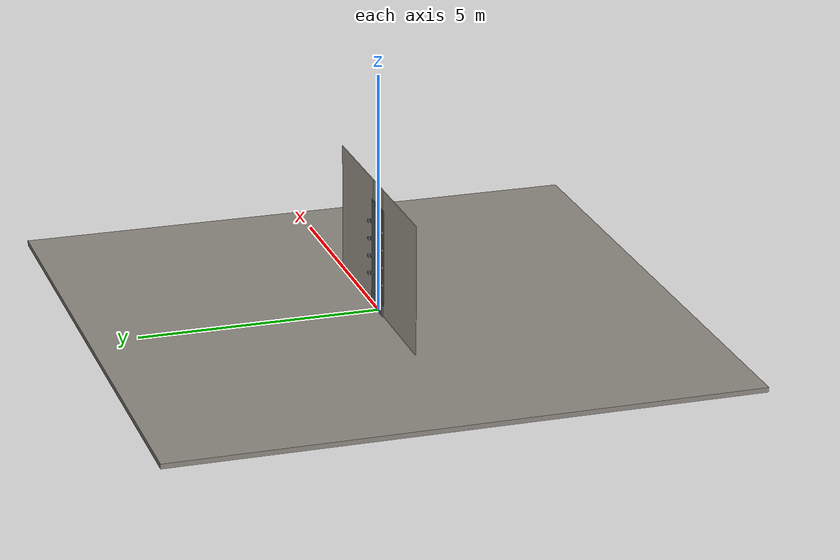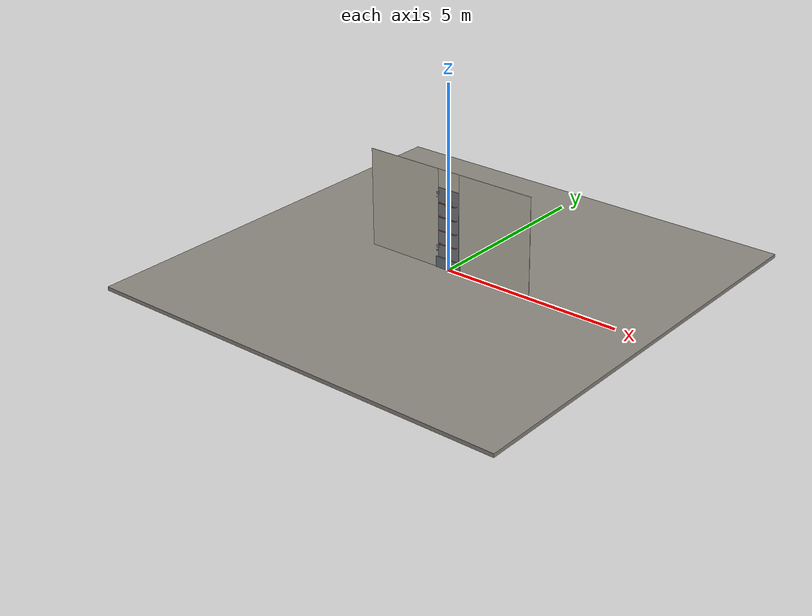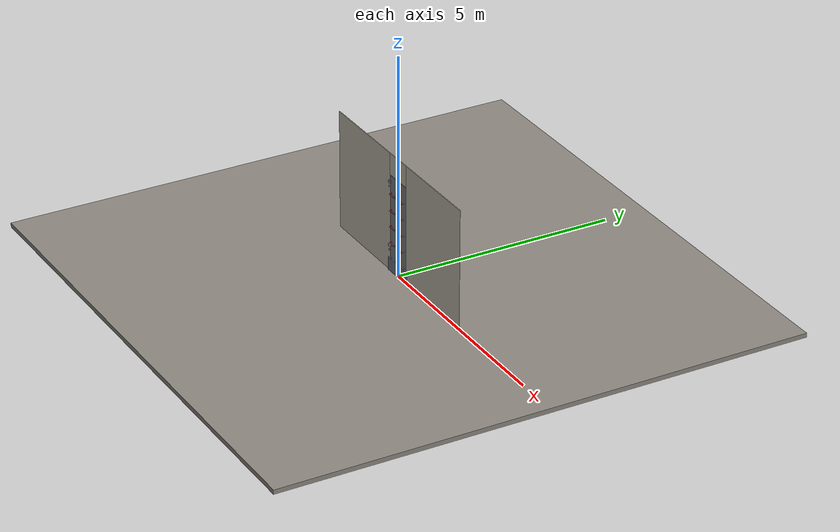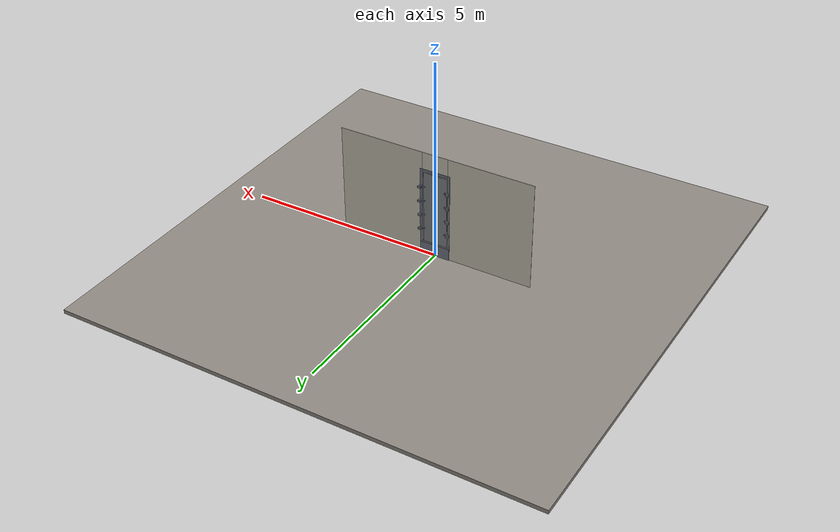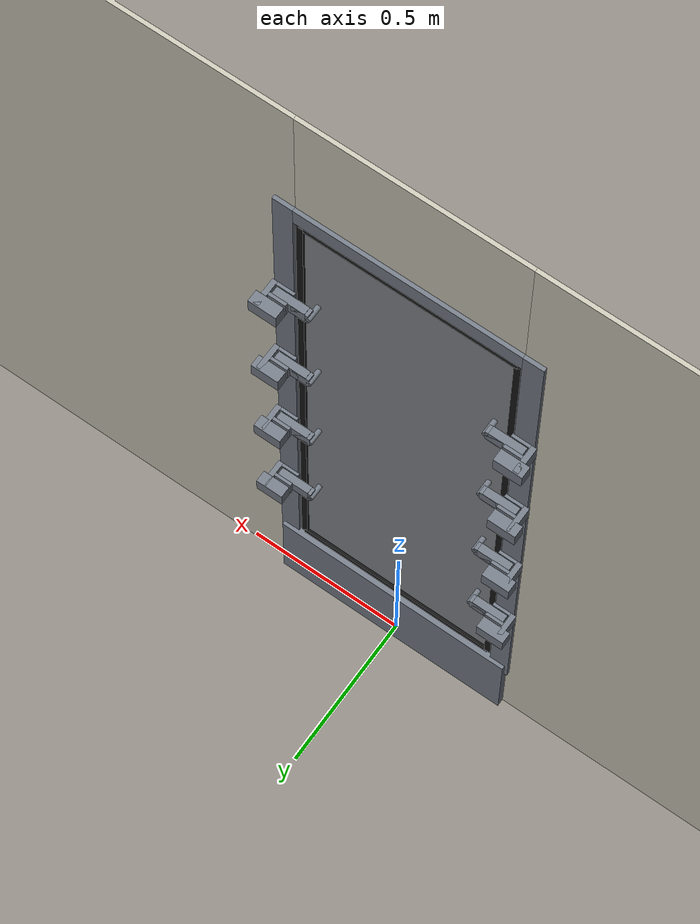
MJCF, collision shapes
<?xml version="1.0" ?>
<mujoco model="db0674_ship_watertight_full">
  <compiler angle="radian" meshdir="../../hardware" texturedir="../../textures" autolimits="true" inertiafromgeom="false"/>
  <option timestep="0.002" integrator="implicitfast" cone="elliptic" impratio="10" noslip_iterations="3">
    <flag multiccd="enable"/>
  </option>
  <size memory="16M"/>
  <default>
    <geom condim="4" solref="0.005 1" solimp="0.95 0.99 0.001"/>
    <joint solreflimit="0.005 1" solimplimit="0.95 0.99 0.001"/>
    <tendon solreflimit="0.005 1"/>
    <equality solref="0.002 1"/>
  </default>
  <visual>
    <headlight ambient="0.4 0.4 0.4" diffuse="0.7 0.7 0.7" specular="0.2 0.2 0.2"/>
    <quality shadowsize="4096"/>
    <map znear="0.01" zfar="60"/>
  </visual>
  <asset>
    <mesh name="hinge_460c4f7b0c" file="hinge_460c4f7b0c.obj"/>
    <mesh name="hinge_jamb_d28bb5db30" file="hinge_jamb_d28bb5db30.obj"/>
    <mesh name="lever_88a39579f3" file="lever_88a39579f3.obj"/>
    <material name="mat_floor" rgba="0.55 0.53 0.5 1" specular="0.2" shininess="0.15" reflectance="0"/>
    <material name="mat_wall" rgba="0.78 0.76 0.7 1" specular="0.2" shininess="0.1" reflectance="0"/>
    <material name="mat_leaf" rgba="0.5 0.51 0.53 1" specular="0.23" shininess="0.62" reflectance="0.02"/>
    <material name="mat_frame" rgba="0.45 0.48 0.52 1" specular="0.32" shininess="0.6" reflectance="0.08"/>
    <material name="mat_gasket" rgba="0.08 0.08 0.08 1" specular="0.2" shininess="0.1" reflectance="0"/>
    <material name="mat_op_steel_painted" rgba="0.45 0.48 0.52 1" specular="0.32" shininess="0.6" reflectance="0.08"/>
    <material name="mat_hinge" rgba="0.65 0.66 0.68 1" specular="0.74" shininess="0.5" reflectance="0.36"/>
    <material name="mat_placard" rgba="0.95 0.75 0.05 1" specular="0.2" shininess="0.5" reflectance="0"/>
    <texture name="skybox" type="skybox" builtin="gradient" rgb1="0.6 0.7 0.85" rgb2="0.9 0.92 0.95" width="256" height="256"/>
  </asset>
  <worldbody>
    <light name="sun" pos="1.5 -2.5 4" dir="-0.3 0.5 -0.8" directional="true" diffuse="0.8 0.8 0.8" specular="0.3 0.3 0.3" castshadow="true"/>
    <light name="fill" pos="-1.5 2.5 3" dir="0.3 -0.5 -0.7" directional="true" diffuse="0.35 0.35 0.4" castshadow="false"/>
    <camera name="robot_view" pos="0 -2.415625 1.781375" xyaxes="1 0 0 0 0.26963 0.962964" fovy="52"/>
    <camera name="far_view" pos="0 2.415625 1.781375" xyaxes="-1 0 0 0 -0.26963 0.962964" fovy="52"/>
    <camera name="iso" pos="1.835875 -2.029125 2.167875" xyaxes="0.741536 0.670913 0 -0.242917 0.268487 0.932151" fovy="46"/>
    <camera name="detail_handle" pos="0.264 -0.856 0.9675" xyaxes="0.97561 0.219512 0 -0.070934 0.315262 0.94635" fovy="38"/>
    <geom name="floor" type="box" size="6 6 0.05" pos="0 0 -0.05" material="mat_floor" group="0" contype="1" conaffinity="1" friction="0.8 0.005 0.0001" density="2400"/>
    <geom name="wall_left" type="box" size="1.085 0.006 1.35" pos="-1.415 0 1.35" material="mat_wall" group="0" contype="1" conaffinity="1" friction="0.6 0.005 0.0001" density="800"/>
    <geom name="wall_right" type="box" size="1.085 0.006 1.35" pos="1.415 0 1.35" material="mat_wall" group="0" contype="1" conaffinity="1" friction="0.6 0.005 0.0001" density="800"/>
    <geom name="wall_header" type="box" size="0.33 0.006 0.245" pos="0 0 2.455" material="mat_wall" group="0" contype="1" conaffinity="1" friction="0.6 0.005 0.0001" density="800"/>
    <geom name="flange_l" type="box" size="0.03 0.006 1.015" pos="-0.36 0.012 1.255" material="mat_frame" group="0" contype="1" conaffinity="1" friction="0.6 0.005 0.0001" solref="0.02 1" density="7850"/>
    <geom name="flange_r" type="box" size="0.03 0.006 1.015" pos="0.36 0.012 1.255" material="mat_frame" group="0" contype="1" conaffinity="1" friction="0.6 0.005 0.0001" solref="0.02 1" density="7850"/>
    <geom name="flange_t" type="box" size="0.33 0.006 0.03" pos="0 0.012 2.24" material="mat_frame" group="0" contype="1" conaffinity="1" friction="0.6 0.005 0.0001" solref="0.02 1" density="7850"/>
    <geom name="flange_b" type="box" size="0.33 0.006 0.03" pos="0 0.012 0.27" material="mat_frame" group="0" contype="1" conaffinity="1" friction="0.6 0.005 0.0001" solref="0.02 1" density="7850"/>
    <geom name="coaming" type="box" size="0.38 0.03 0.15" pos="0 0 0.15" material="mat_frame" group="0" contype="1" conaffinity="1" friction="0.6 0.005 0.0001" density="7850"/>
    <geom name="cleat_0" type="box" size="0.0275 0.005 0.025" pos="0.3515 0.0225 0.6875" material="mat_frame" group="0" contype="1" conaffinity="1" friction="0.6 0.005 0.0001" density="7850"/>
    <geom name="cleat_0_outer" type="box" size="0.0275 0.005 0.025" pos="0.3515 0.0575 0.6875" material="mat_frame" group="0" contype="1" conaffinity="1" friction="0.6 0.005 0.0001" density="7850"/>
    <geom name="cleat_0_base" type="box" size="0.0425 0.018 0.025" pos="0.3665 0.086 0.6875" material="mat_frame" group="0" contype="1" conaffinity="1" friction="0.6 0.005 0.0001" density="7850"/>
    <geom name="cleat_0_bridge" type="box" size="0.008 0.041 0.025" pos="0.387 0.059 0.6875" material="mat_frame" group="0" contype="1" conaffinity="1" friction="0.6 0.005 0.0001" density="7850"/>
    <geom name="cleat_1" type="box" size="0.0275 0.005 0.025" pos="-0.3535 0.0225 0.6875" material="mat_frame" group="0" contype="1" conaffinity="1" friction="0.6 0.005 0.0001" density="7850"/>
    <geom name="cleat_1_outer" type="box" size="0.0275 0.005 0.025" pos="-0.3535 0.0575 0.6875" material="mat_frame" group="0" contype="1" conaffinity="1" friction="0.6 0.005 0.0001" density="7850"/>
    <geom name="cleat_1_base" type="box" size="0.0425 0.018 0.025" pos="-0.3685 0.086 0.6875" material="mat_frame" group="0" contype="1" conaffinity="1" friction="0.6 0.005 0.0001" density="7850"/>
    <geom name="cleat_1_bridge" type="box" size="0.008 0.041 0.025" pos="-0.389 0.059 0.6875" material="mat_frame" group="0" contype="1" conaffinity="1" friction="0.6 0.005 0.0001" density="7850"/>
    <geom name="cleat_2" type="box" size="0.0275 0.005 0.025" pos="0.3515 0.0225 1.0625" material="mat_frame" group="0" contype="1" conaffinity="1" friction="0.6 0.005 0.0001" density="7850"/>
    <geom name="cleat_2_outer" type="box" size="0.0275 0.005 0.025" pos="0.3515 0.0575 1.0625" material="mat_frame" group="0" contype="1" conaffinity="1" friction="0.6 0.005 0.0001" density="7850"/>
    <geom name="cleat_2_base" type="box" size="0.0425 0.018 0.025" pos="0.3665 0.086 1.0625" material="mat_frame" group="0" contype="1" conaffinity="1" friction="0.6 0.005 0.0001" density="7850"/>
    <geom name="cleat_2_bridge" type="box" size="0.008 0.041 0.025" pos="0.387 0.059 1.0625" material="mat_frame" group="0" contype="1" conaffinity="1" friction="0.6 0.005 0.0001" density="7850"/>
    <geom name="cleat_3" type="box" size="0.0275 0.005 0.025" pos="-0.3535 0.0225 1.0625" material="mat_frame" group="0" contype="1" conaffinity="1" friction="0.6 0.005 0.0001" density="7850"/>
    <geom name="cleat_3_outer" type="box" size="0.0275 0.005 0.025" pos="-0.3535 0.0575 1.0625" material="mat_frame" group="0" contype="1" conaffinity="1" friction="0.6 0.005 0.0001" density="7850"/>
    <geom name="cleat_3_base" type="box" size="0.0425 0.018 0.025" pos="-0.3685 0.086 1.0625" material="mat_frame" group="0" contype="1" conaffinity="1" friction="0.6 0.005 0.0001" density="7850"/>
    <geom name="cleat_3_bridge" type="box" size="0.008 0.041 0.025" pos="-0.389 0.059 1.0625" material="mat_frame" group="0" contype="1" conaffinity="1" friction="0.6 0.005 0.0001" density="7850"/>
    <geom name="cleat_4" type="box" size="0.0275 0.005 0.025" pos="0.3515 0.0225 1.4375" material="mat_frame" group="0" contype="1" conaffinity="1" friction="0.6 0.005 0.0001" density="7850"/>
    <geom name="cleat_4_outer" type="box" size="0.0275 0.005 0.025" pos="0.3515 0.0575 1.4375" material="mat_frame" group="0" contype="1" conaffinity="1" friction="0.6 0.005 0.0001" density="7850"/>
    <geom name="cleat_4_base" type="box" size="0.0425 0.018 0.025" pos="0.3665 0.086 1.4375" material="mat_frame" group="0" contype="1" conaffinity="1" friction="0.6 0.005 0.0001" density="7850"/>
    <geom name="cleat_4_bridge" type="box" size="0.008 0.041 0.025" pos="0.387 0.059 1.4375" material="mat_frame" group="0" contype="1" conaffinity="1" friction="0.6 0.005 0.0001" density="7850"/>
    <geom name="cleat_5" type="box" size="0.0275 0.005 0.025" pos="-0.3535 0.0225 1.4375" material="mat_frame" group="0" contype="1" conaffinity="1" friction="0.6 0.005 0.0001" density="7850"/>
    <geom name="cleat_5_outer" type="box" size="0.0275 0.005 0.025" pos="-0.3535 0.0575 1.4375" material="mat_frame" group="0" contype="1" conaffinity="1" friction="0.6 0.005 0.0001" density="7850"/>
    <geom name="cleat_5_base" type="box" size="0.0425 0.018 0.025" pos="-0.3685 0.086 1.4375" material="mat_frame" group="0" contype="1" conaffinity="1" friction="0.6 0.005 0.0001" density="7850"/>
    <geom name="cleat_5_bridge" type="box" size="0.008 0.041 0.025" pos="-0.389 0.059 1.4375" material="mat_frame" group="0" contype="1" conaffinity="1" friction="0.6 0.005 0.0001" density="7850"/>
    <geom name="cleat_6" type="box" size="0.0275 0.005 0.025" pos="0.3515 0.0225 1.8125" material="mat_frame" group="0" contype="1" conaffinity="1" friction="0.6 0.005 0.0001" density="7850"/>
    <geom name="cleat_6_outer" type="box" size="0.0275 0.005 0.025" pos="0.3515 0.0575 1.8125" material="mat_frame" group="0" contype="1" conaffinity="1" friction="0.6 0.005 0.0001" density="7850"/>
    <geom name="cleat_6_base" type="box" size="0.0425 0.018 0.025" pos="0.3665 0.086 1.8125" material="mat_frame" group="0" contype="1" conaffinity="1" friction="0.6 0.005 0.0001" density="7850"/>
    <geom name="cleat_6_bridge" type="box" size="0.008 0.041 0.025" pos="0.387 0.059 1.8125" material="mat_frame" group="0" contype="1" conaffinity="1" friction="0.6 0.005 0.0001" density="7850"/>
    <geom name="cleat_7" type="box" size="0.0275 0.005 0.025" pos="-0.3535 0.0225 1.8125" material="mat_frame" group="0" contype="1" conaffinity="1" friction="0.6 0.005 0.0001" density="7850"/>
    <geom name="cleat_7_outer" type="box" size="0.0275 0.005 0.025" pos="-0.3535 0.0575 1.8125" material="mat_frame" group="0" contype="1" conaffinity="1" friction="0.6 0.005 0.0001" density="7850"/>
    <geom name="cleat_7_base" type="box" size="0.0425 0.018 0.025" pos="-0.3685 0.086 1.8125" material="mat_frame" group="0" contype="1" conaffinity="1" friction="0.6 0.005 0.0001" density="7850"/>
    <geom name="cleat_7_bridge" type="box" size="0.008 0.041 0.025" pos="-0.389 0.059 1.8125" material="mat_frame" group="0" contype="1" conaffinity="1" friction="0.6 0.005 0.0001" density="7850"/>
    <geom name="hinge_0_jamb" type="mesh" mesh="hinge_jamb_d28bb5db30" pos="-0.36 -0.026 0.554" material="mat_hinge" group="1" contype="0" conaffinity="0" density="7850"/>
    <geom name="hinge_0_jamb_lug" type="box" size="0.01 0.004 0.02" pos="-0.36 -0.012 0.467" material="mat_hinge" group="1" contype="0" conaffinity="0" density="7850"/>
    <geom name="hinge_1_jamb" type="mesh" mesh="hinge_jamb_d28bb5db30" pos="-0.36 -0.026 2.024" material="mat_hinge" group="1" contype="0" conaffinity="0" density="7850"/>
    <geom name="hinge_1_jamb_lug" type="box" size="0.01 0.004 0.02" pos="-0.36 -0.012 1.937" material="mat_hinge" group="1" contype="0" conaffinity="0" density="7850"/>
    <site name="approach_point" pos="0 -1.5 0" quat="1 0 0 0" size="0.05" rgba="0.2 0.9 0.2 0.5" group="4"/>
    <site name="goal_point" pos="0 1.5 0" quat="1 0 0 0" size="0.05" rgba="0.2 0.9 0.2 0.5" group="4"/>
    <site name="door_plane_center" pos="0 0 1.255" quat="1 0 0 0" size="0.02" rgba="0.2 0.9 0.2 0.5" group="4"/>
    <body name="leaf" pos="-0.33 0 0.3">
      <inertial pos="0.320522 -0.000492 0.955537" mass="116.337" quat="-0.499109 0.501625 -0.498328 -0.500931" diaginertia="4.37161172 35.816296117 40.181944933"/>
      <joint name="leaf_hinge" type="hinge" axis="0 0 -1" pos="-0.03 -0.026 0" limited="true" range="0 2.356194" solreflimit="0.02 1" damping="0.111253" frictionloss="17.301582" armature="0.02"/>
      <geom name="leaf_slab" type="box" size="0.325 0.006 0.95" pos="0.329 0 0.954" material="mat_leaf" group="0" contype="1" conaffinity="1" friction="0.4 0.005 0.0001" density="1"/>
      <geom name="gasket_l" type="box" size="0.01 0.004 0.94" pos="0.014 0.01 0.954" material="mat_gasket" group="1" contype="0" conaffinity="0" density="1100"/>
      <geom name="gasket_r" type="box" size="0.01 0.004 0.94" pos="0.644 0.01 0.954" material="mat_gasket" group="1" contype="0" conaffinity="0" density="1100"/>
      <geom name="gasket_b" type="box" size="0.315 0.004 0.01" pos="0.329 0.01 0.014" material="mat_gasket" group="1" contype="0" conaffinity="0" density="1100"/>
      <geom name="gasket_t" type="box" size="0.315 0.004 0.01" pos="0.329 0.01 1.894" material="mat_gasket" group="1" contype="0" conaffinity="0" density="1100"/>
      <geom name="hinge_0" type="mesh" mesh="hinge_460c4f7b0c" pos="-0.03 -0.026 0.254" material="mat_hinge" group="1" contype="0" conaffinity="0" density="7850"/>
      <geom name="hinge_0_lug_foot" type="box" size="0.02 0.0045 0.03" pos="0.026 -0.0105 0.287" material="mat_hinge" group="1" contype="0" conaffinity="0" density="7850"/>
      <geom name="hinge_0_lug" type="box" size="0.026 0.0095 0.03" pos="-0.01 -0.0225 0.287" material="mat_hinge" group="1" contype="0" conaffinity="0" density="7850"/>
      <geom name="hinge_1" type="mesh" mesh="hinge_460c4f7b0c" pos="-0.03 -0.026 1.724" material="mat_hinge" group="1" contype="0" conaffinity="0" density="7850"/>
      <geom name="hinge_1_lug_foot" type="box" size="0.02 0.0045 0.03" pos="0.026 -0.0105 1.757" material="mat_hinge" group="1" contype="0" conaffinity="0" density="7850"/>
      <geom name="hinge_1_lug" type="box" size="0.026 0.0095 0.03" pos="-0.01 -0.0225 1.757" material="mat_hinge" group="1" contype="0" conaffinity="0" density="7850"/>
      <geom name="warning_placard" type="box" size="0.11 0.001 0.08" pos="0.329 -0.007 1.52" material="mat_placard" group="2" contype="0" conaffinity="0" density="1000"/>
      <body name="dog_0" pos="0.594 0 0.3875">
        <inertial pos="-0.052787 -0.024551 0" mass="3.665996" quat="-0.187696 0 0 0.982227" diaginertia="0.003019738 0.040016769 0.04245862"/>
        <joint name="dog_0_hinge" type="hinge" axis="0 -1 0" limited="true" range="0 1.5708" damping="0.5" frictionloss="1.5" armature="0.005"/>
        <geom name="dog_0_lever" type="mesh" mesh="lever_88a39579f3" pos="0 -0.015 0" quat="0.707107 0.707107 0 0" material="mat_op_steel_painted" group="1" contype="0" conaffinity="0" density="7800"/>
        <geom name="dog_0_lever_col" type="capsule" size="0.0125 0.1" pos="-0.11 -0.056 0" quat="0.707107 0 0.707107 0" material="mat_op_steel_painted" group="3" contype="1" conaffinity="1" rgba="0.8 0.3 0.3 0.25" friction="0.7 0.01 0.0001" density="7800"/>
        <geom name="dog_0_wedge" type="box" size="0.05 0.012 0.02" pos="0.06 0.04 0" material="mat_op_steel_painted" group="0" contype="1" conaffinity="1" friction="0.6 0.005 0.0001" density="7800"/>
        <geom name="dog_0_shaft" type="cylinder" size="0.008 0.035" pos="0 0.017 0" quat="0.707107 -0.707107 0 0" material="mat_op_steel_painted" group="1" contype="0" conaffinity="0" density="7800"/>
        <geom name="dog_0_crank" type="box" size="0.026 0.012 0.018" pos="0.026 0.04 0" material="mat_op_steel_painted" group="1" contype="0" conaffinity="0" density="7800"/>
        <site name="dog_0_grip" pos="-0.18 -0.056 0" quat="1 0 0 0" size="0.012" rgba="0.2 0.9 0.2 0.5" group="4"/>
      </body>
      <body name="dog_1" pos="0.064 0 0.3875">
        <inertial pos="0.052787 -0.024551 0" mass="3.665996" quat="0.187696 0 0 0.982227" diaginertia="0.003019738 0.040016769 0.04245862"/>
        <joint name="dog_1_hinge" type="hinge" axis="0 1 0" limited="true" range="0 1.5708" damping="0.5" frictionloss="1.5" armature="0.005"/>
        <geom name="dog_1_lever" type="mesh" mesh="lever_88a39579f3" pos="0 -0.015 0" quat="0 0 -0.707107 0.707107" material="mat_op_steel_painted" group="1" contype="0" conaffinity="0" density="7800"/>
        <geom name="dog_1_lever_col" type="capsule" size="0.0125 0.1" pos="0.11 -0.056 0" quat="0.707107 0 0.707107 0" material="mat_op_steel_painted" group="3" contype="1" conaffinity="1" rgba="0.8 0.3 0.3 0.25" friction="0.7 0.01 0.0001" density="7800"/>
        <geom name="dog_1_wedge" type="box" size="0.05 0.012 0.02" pos="-0.06 0.04 0" material="mat_op_steel_painted" group="0" contype="1" conaffinity="1" friction="0.6 0.005 0.0001" density="7800"/>
        <geom name="dog_1_shaft" type="cylinder" size="0.008 0.035" pos="0 0.017 0" quat="0.707107 -0.707107 0 0" material="mat_op_steel_painted" group="1" contype="0" conaffinity="0" density="7800"/>
        <geom name="dog_1_crank" type="box" size="0.026 0.012 0.018" pos="-0.026 0.04 0" material="mat_op_steel_painted" group="1" contype="0" conaffinity="0" density="7800"/>
        <site name="dog_1_grip" pos="0.18 -0.056 0" quat="1 0 0 0" size="0.012" rgba="0.2 0.9 0.2 0.5" group="4"/>
      </body>
      <body name="dog_2" pos="0.594 0 0.7625">
        <inertial pos="-0.052787 -0.024551 0" mass="3.665996" quat="-0.187696 0 0 0.982227" diaginertia="0.003019738 0.040016769 0.04245862"/>
        <joint name="dog_2_hinge" type="hinge" axis="0 -1 0" limited="true" range="0 1.5708" damping="0.5" frictionloss="1.5" armature="0.005"/>
        <geom name="dog_2_lever" type="mesh" mesh="lever_88a39579f3" pos="0 -0.015 0" quat="0.707107 0.707107 0 0" material="mat_op_steel_painted" group="1" contype="0" conaffinity="0" density="7800"/>
        <geom name="dog_2_lever_col" type="capsule" size="0.0125 0.1" pos="-0.11 -0.056 0" quat="0.707107 0 0.707107 0" material="mat_op_steel_painted" group="3" contype="1" conaffinity="1" rgba="0.8 0.3 0.3 0.25" friction="0.7 0.01 0.0001" density="7800"/>
        <geom name="dog_2_wedge" type="box" size="0.05 0.012 0.02" pos="0.06 0.04 0" material="mat_op_steel_painted" group="0" contype="1" conaffinity="1" friction="0.6 0.005 0.0001" density="7800"/>
        <geom name="dog_2_shaft" type="cylinder" size="0.008 0.035" pos="0 0.017 0" quat="0.707107 -0.707107 0 0" material="mat_op_steel_painted" group="1" contype="0" conaffinity="0" density="7800"/>
        <geom name="dog_2_crank" type="box" size="0.026 0.012 0.018" pos="0.026 0.04 0" material="mat_op_steel_painted" group="1" contype="0" conaffinity="0" density="7800"/>
        <site name="dog_2_grip" pos="-0.18 -0.056 0" quat="1 0 0 0" size="0.012" rgba="0.2 0.9 0.2 0.5" group="4"/>
      </body>
      <body name="dog_3" pos="0.064 0 0.7625">
        <inertial pos="0.052787 -0.024551 0" mass="3.665996" quat="0.187696 0 0 0.982227" diaginertia="0.003019738 0.040016769 0.04245862"/>
        <joint name="dog_3_hinge" type="hinge" axis="0 1 0" limited="true" range="0 1.5708" damping="0.5" frictionloss="1.5" armature="0.005"/>
        <geom name="dog_3_lever" type="mesh" mesh="lever_88a39579f3" pos="0 -0.015 0" quat="0 0 -0.707107 0.707107" material="mat_op_steel_painted" group="1" contype="0" conaffinity="0" density="7800"/>
        <geom name="dog_3_lever_col" type="capsule" size="0.0125 0.1" pos="0.11 -0.056 0" quat="0.707107 0 0.707107 0" material="mat_op_steel_painted" group="3" contype="1" conaffinity="1" rgba="0.8 0.3 0.3 0.25" friction="0.7 0.01 0.0001" density="7800"/>
        <geom name="dog_3_wedge" type="box" size="0.05 0.012 0.02" pos="-0.06 0.04 0" material="mat_op_steel_painted" group="0" contype="1" conaffinity="1" friction="0.6 0.005 0.0001" density="7800"/>
        <geom name="dog_3_shaft" type="cylinder" size="0.008 0.035" pos="0 0.017 0" quat="0.707107 -0.707107 0 0" material="mat_op_steel_painted" group="1" contype="0" conaffinity="0" density="7800"/>
        <geom name="dog_3_crank" type="box" size="0.026 0.012 0.018" pos="-0.026 0.04 0" material="mat_op_steel_painted" group="1" contype="0" conaffinity="0" density="7800"/>
        <site name="dog_3_grip" pos="0.18 -0.056 0" quat="1 0 0 0" size="0.012" rgba="0.2 0.9 0.2 0.5" group="4"/>
      </body>
      <body name="dog_4" pos="0.594 0 1.1375">
        <inertial pos="-0.052787 -0.024551 0" mass="3.665996" quat="-0.187696 0 0 0.982227" diaginertia="0.003019738 0.040016769 0.04245862"/>
        <joint name="dog_4_hinge" type="hinge" axis="0 -1 0" limited="true" range="0 1.5708" damping="0.5" frictionloss="1.5" armature="0.005"/>
        <geom name="dog_4_lever" type="mesh" mesh="lever_88a39579f3" pos="0 -0.015 0" quat="0.707107 0.707107 0 0" material="mat_op_steel_painted" group="1" contype="0" conaffinity="0" density="7800"/>
        <geom name="dog_4_lever_col" type="capsule" size="0.0125 0.1" pos="-0.11 -0.056 0" quat="0.707107 0 0.707107 0" material="mat_op_steel_painted" group="3" contype="1" conaffinity="1" rgba="0.8 0.3 0.3 0.25" friction="0.7 0.01 0.0001" density="7800"/>
        <geom name="dog_4_wedge" type="box" size="0.05 0.012 0.02" pos="0.06 0.04 0" material="mat_op_steel_painted" group="0" contype="1" conaffinity="1" friction="0.6 0.005 0.0001" density="7800"/>
        <geom name="dog_4_shaft" type="cylinder" size="0.008 0.035" pos="0 0.017 0" quat="0.707107 -0.707107 0 0" material="mat_op_steel_painted" group="1" contype="0" conaffinity="0" density="7800"/>
        <geom name="dog_4_crank" type="box" size="0.026 0.012 0.018" pos="0.026 0.04 0" material="mat_op_steel_painted" group="1" contype="0" conaffinity="0" density="7800"/>
        <site name="dog_4_grip" pos="-0.18 -0.056 0" quat="1 0 0 0" size="0.012" rgba="0.2 0.9 0.2 0.5" group="4"/>
      </body>
      <body name="dog_5" pos="0.064 0 1.1375">
        <inertial pos="0.052787 -0.024551 0" mass="3.665996" quat="0.187696 0 0 0.982227" diaginertia="0.003019738 0.040016769 0.04245862"/>
        <joint name="dog_5_hinge" type="hinge" axis="0 1 0" limited="true" range="0 1.5708" damping="0.5" frictionloss="1.5" armature="0.005"/>
        <geom name="dog_5_lever" type="mesh" mesh="lever_88a39579f3" pos="0 -0.015 0" quat="0 0 -0.707107 0.707107" material="mat_op_steel_painted" group="1" contype="0" conaffinity="0" density="7800"/>
        <geom name="dog_5_lever_col" type="capsule" size="0.0125 0.1" pos="0.11 -0.056 0" quat="0.707107 0 0.707107 0" material="mat_op_steel_painted" group="3" contype="1" conaffinity="1" rgba="0.8 0.3 0.3 0.25" friction="0.7 0.01 0.0001" density="7800"/>
        <geom name="dog_5_wedge" type="box" size="0.05 0.012 0.02" pos="-0.06 0.04 0" material="mat_op_steel_painted" group="0" contype="1" conaffinity="1" friction="0.6 0.005 0.0001" density="7800"/>
        <geom name="dog_5_shaft" type="cylinder" size="0.008 0.035" pos="0 0.017 0" quat="0.707107 -0.707107 0 0" material="mat_op_steel_painted" group="1" contype="0" conaffinity="0" density="7800"/>
        <geom name="dog_5_crank" type="box" size="0.026 0.012 0.018" pos="-0.026 0.04 0" material="mat_op_steel_painted" group="1" contype="0" conaffinity="0" density="7800"/>
        <site name="dog_5_grip" pos="0.18 -0.056 0" quat="1 0 0 0" size="0.012" rgba="0.2 0.9 0.2 0.5" group="4"/>
      </body>
      <body name="dog_6" pos="0.594 0 1.5125">
        <inertial pos="-0.052787 -0.024551 0" mass="3.665996" quat="-0.187696 0 0 0.982227" diaginertia="0.003019738 0.040016769 0.04245862"/>
        <joint name="dog_6_hinge" type="hinge" axis="0 -1 0" limited="true" range="0 1.5708" damping="0.5" frictionloss="1.5" armature="0.005"/>
        <geom name="dog_6_lever" type="mesh" mesh="lever_88a39579f3" pos="0 -0.015 0" quat="0.707107 0.707107 0 0" material="mat_op_steel_painted" group="1" contype="0" conaffinity="0" density="7800"/>
        <geom name="dog_6_lever_col" type="capsule" size="0.0125 0.1" pos="-0.11 -0.056 0" quat="0.707107 0 0.707107 0" material="mat_op_steel_painted" group="3" contype="1" conaffinity="1" rgba="0.8 0.3 0.3 0.25" friction="0.7 0.01 0.0001" density="7800"/>
        <geom name="dog_6_wedge" type="box" size="0.05 0.012 0.02" pos="0.06 0.04 0" material="mat_op_steel_painted" group="0" contype="1" conaffinity="1" friction="0.6 0.005 0.0001" density="7800"/>
        <geom name="dog_6_shaft" type="cylinder" size="0.008 0.035" pos="0 0.017 0" quat="0.707107 -0.707107 0 0" material="mat_op_steel_painted" group="1" contype="0" conaffinity="0" density="7800"/>
        <geom name="dog_6_crank" type="box" size="0.026 0.012 0.018" pos="0.026 0.04 0" material="mat_op_steel_painted" group="1" contype="0" conaffinity="0" density="7800"/>
        <site name="dog_6_grip" pos="-0.18 -0.056 0" quat="1 0 0 0" size="0.012" rgba="0.2 0.9 0.2 0.5" group="4"/>
      </body>
      <body name="dog_7" pos="0.064 0 1.5125">
        <inertial pos="0.052787 -0.024551 0" mass="3.665996" quat="0.187696 0 0 0.982227" diaginertia="0.003019738 0.040016769 0.04245862"/>
        <joint name="dog_7_hinge" type="hinge" axis="0 1 0" limited="true" range="0 1.5708" damping="0.5" frictionloss="1.5" armature="0.005"/>
        <geom name="dog_7_lever" type="mesh" mesh="lever_88a39579f3" pos="0 -0.015 0" quat="0 0 -0.707107 0.707107" material="mat_op_steel_painted" group="1" contype="0" conaffinity="0" density="7800"/>
        <geom name="dog_7_lever_col" type="capsule" size="0.0125 0.1" pos="0.11 -0.056 0" quat="0.707107 0 0.707107 0" material="mat_op_steel_painted" group="3" contype="1" conaffinity="1" rgba="0.8 0.3 0.3 0.25" friction="0.7 0.01 0.0001" density="7800"/>
        <geom name="dog_7_wedge" type="box" size="0.05 0.012 0.02" pos="-0.06 0.04 0" material="mat_op_steel_painted" group="0" contype="1" conaffinity="1" friction="0.6 0.005 0.0001" density="7800"/>
        <geom name="dog_7_shaft" type="cylinder" size="0.008 0.035" pos="0 0.017 0" quat="0.707107 -0.707107 0 0" material="mat_op_steel_painted" group="1" contype="0" conaffinity="0" density="7800"/>
        <geom name="dog_7_crank" type="box" size="0.026 0.012 0.018" pos="-0.026 0.04 0" material="mat_op_steel_painted" group="1" contype="0" conaffinity="0" density="7800"/>
        <site name="dog_7_grip" pos="0.18 -0.056 0" quat="1 0 0 0" size="0.012" rgba="0.2 0.9 0.2 0.5" group="4"/>
      </body>
    </body>
  </worldbody>
  <sensor>
    <jointpos name="leaf_hinge_pos" joint="leaf_hinge"/>
    <jointvel name="leaf_hinge_vel" joint="leaf_hinge"/>
    <jointpos name="dog_0_hinge_pos" joint="dog_0_hinge"/>
    <jointvel name="dog_0_hinge_vel" joint="dog_0_hinge"/>
    <jointpos name="dog_1_hinge_pos" joint="dog_1_hinge"/>
    <jointvel name="dog_1_hinge_vel" joint="dog_1_hinge"/>
    <jointpos name="dog_2_hinge_pos" joint="dog_2_hinge"/>
    <jointvel name="dog_2_hinge_vel" joint="dog_2_hinge"/>
    <jointpos name="dog_3_hinge_pos" joint="dog_3_hinge"/>
    <jointvel name="dog_3_hinge_vel" joint="dog_3_hinge"/>
    <jointpos name="dog_4_hinge_pos" joint="dog_4_hinge"/>
    <jointvel name="dog_4_hinge_vel" joint="dog_4_hinge"/>
    <jointpos name="dog_5_hinge_pos" joint="dog_5_hinge"/>
    <jointvel name="dog_5_hinge_vel" joint="dog_5_hinge"/>
    <jointpos name="dog_6_hinge_pos" joint="dog_6_hinge"/>
    <jointvel name="dog_6_hinge_vel" joint="dog_6_hinge"/>
    <jointpos name="dog_7_hinge_pos" joint="dog_7_hinge"/>
    <jointvel name="dog_7_hinge_vel" joint="dog_7_hinge"/>
  </sensor>
</mujoco>
